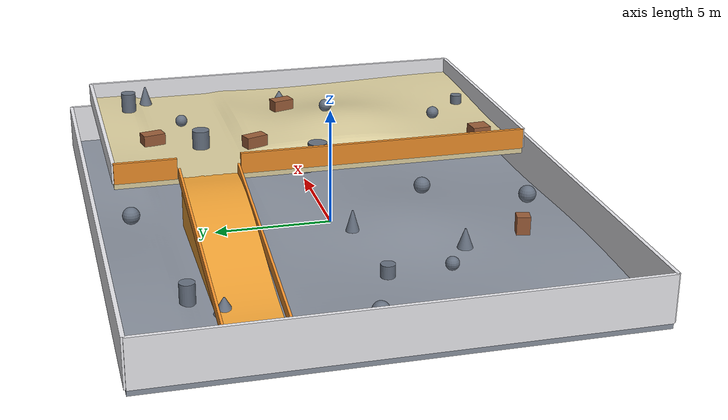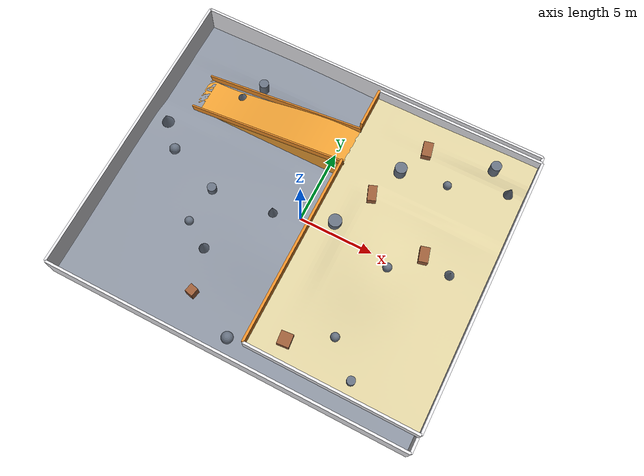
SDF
<?xml version='1.0' encoding='utf-8'?>
<sdf version="1.7">
  <world name="floor_7">
    <gravity>0 0 -9.8</gravity>
    <plugin name="gazebo_ros_state" filename="libgazebo_ros_state.so">
      <ros>
        <namespace>/gazebo</namespace>
      </ros>
    </plugin>
    <physics name="ode_physics" type="ode">
      <max_step_size>0.001</max_step_size>
      <real_time_factor>1</real_time_factor>
      <real_time_update_rate>1000</real_time_update_rate>
      <ode>
        <solver>
          <type>quick</type>
          <iters>150</iters>
          <sor>1.3</sor>
        </solver>
        <constraints>
          <cfm>0</cfm>
          <erp>0.2</erp>
          <contact_max_correcting_vel>0.2</contact_max_correcting_vel>
          <contact_surface_layer>0.001</contact_surface_layer>
        </constraints>
      </ode>
    </physics>
    <light name="sun" type="directional">
      <pose>0 0 28 0 0 0</pose>
      <diffuse>0.92 0.91 0.88 1</diffuse>
      <specular>0.18 0.18 0.16 1</specular>
      <direction>-0.35 -0.28 -0.9</direction>
      <cast_shadows>true</cast_shadows>
    </light>
    <light name="fill" type="point">
      <pose>0 0 4.5 0 0 0</pose>
      <diffuse>0.45 0.48 0.52 1</diffuse>
      <specular>0.02 0.02 0.02 1</specular>
      <cast_shadows>false</cast_shadows>
      <attenuation>
        <range>80</range>
        <constant>0.5</constant>
        <linear>0.02</linear>
      </attenuation>
    </light>
    <scene>
      <ambient>0.48 0.49 0.53 1</ambient>
      <background>0.72 0.77 0.84 1</background>
    </scene>
    <gui fullscreen="false">
      <camera name="user_camera">
        <pose>16.8 -18 20.4 0 0.65 2.2</pose>
        <view_controller>orbit</view_controller>
      </camera>
    </gui>
    <model name="floor_7_structure">
      <static>true</static>
      <link name="structure">
        <collision name="lower_surface_collision">
          <pose>0 0 0 0 0 0</pose>
          <geometry>
            <mesh>
              <uri>3DModel/floor/surfaces/floor_7_lower_surface.stl</uri>
            </mesh>
          </geometry>
          <max_contacts>40</max_contacts>
          <surface>
            <friction>
              <ode>
                <mu>8</mu>
                <mu2>8</mu2>
              </ode>
            </friction>
            <contact>
              <ode>
                <kp>1e7</kp>
                <kd>1000</kd>
                <max_vel>0.1</max_vel>
                <min_depth>0.001</min_depth>
              </ode>
            </contact>
          </surface>
        </collision>
        <visual name="lower_surface_visual">
          <pose>0 0 0 0 0 0</pose>
          <geometry>
            <mesh>
              <uri>3DModel/floor/surfaces/floor_7_lower_surface.stl</uri>
            </mesh>
          </geometry>
          <material>
            <ambient>0.54 0.57 0.62 1</ambient>
            <diffuse>0.54 0.57 0.62 1</diffuse>
          </material>
        </visual>
        <collision name="upper_surface_collision">
          <pose>0 0 0 0 0 0</pose>
          <geometry>
            <mesh>
              <uri>3DModel/floor/surfaces/floor_7_upper_surface.stl</uri>
            </mesh>
          </geometry>
          <max_contacts>40</max_contacts>
          <surface>
            <friction>
              <ode>
                <mu>8</mu>
                <mu2>8</mu2>
              </ode>
            </friction>
            <contact>
              <ode>
                <kp>1e7</kp>
                <kd>1000</kd>
                <max_vel>0.1</max_vel>
                <min_depth>0.001</min_depth>
              </ode>
            </contact>
          </surface>
        </collision>
        <visual name="upper_surface_visual">
          <pose>0 0 0 0 0 0</pose>
          <geometry>
            <mesh>
              <uri>3DModel/floor/surfaces/floor_7_upper_surface.stl</uri>
            </mesh>
          </geometry>
          <material>
            <ambient>0.86 0.81 0.62 1</ambient>
            <diffuse>0.86 0.81 0.62 1</diffuse>
          </material>
        </visual>
        <collision name="ramp_collision">
          <pose>0 0 0 0 0 0</pose>
          <geometry>
            <mesh>
              <uri>3DModel/floor/surfaces/floor_7_ramp.stl</uri>
            </mesh>
          </geometry>
          <max_contacts>40</max_contacts>
          <surface>
            <friction>
              <ode>
                <mu>8</mu>
                <mu2>8</mu2>
              </ode>
            </friction>
            <contact>
              <ode>
                <kp>1e7</kp>
                <kd>1000</kd>
                <max_vel>0.1</max_vel>
                <min_depth>0.001</min_depth>
              </ode>
            </contact>
          </surface>
        </collision>
        <visual name="ramp_visual">
          <pose>0 0 0 0 0 0</pose>
          <geometry>
            <mesh>
              <uri>3DModel/floor/surfaces/floor_7_ramp.stl</uri>
            </mesh>
          </geometry>
          <material>
            <ambient>0.92 0.62 0.20 1</ambient>
            <diffuse>0.92 0.62 0.20 1</diffuse>
          </material>
        </visual>
        <collision name="ramp_rail_-1_collision">
          <pose>-4.45742636 3.74 1.29173241 0 -0.196525238 0</pose>
          <geometry>
            <box>
              <size>11.2668762 0.1 0.5</size>
            </box>
          </geometry>
          <max_contacts>40</max_contacts>
          <surface>
            <friction>
              <ode>
                <mu>2</mu>
                <mu2>2</mu2>
              </ode>
            </friction>
            <contact>
              <ode>
                <kp>1e7</kp>
                <kd>1000</kd>
                <max_vel>0.1</max_vel>
                <min_depth>0.001</min_depth>
              </ode>
            </contact>
          </surface>
        </collision>
        <visual name="ramp_rail_-1_visual">
          <pose>-4.45742636 3.74 1.29173241 0 -0.196525238 0</pose>
          <geometry>
            <box>
              <size>11.2668762 0.1 0.5</size>
            </box>
          </geometry>
          <material>
            <ambient>0.92 0.55 0.16 1</ambient>
            <diffuse>0.92 0.55 0.16 1</diffuse>
          </material>
        </visual>
        <collision name="ramp_rail_1_collision">
          <pose>-4.45742636 6.26 1.29173241 0 -0.196525238 0</pose>
          <geometry>
            <box>
              <size>11.2668762 0.1 0.5</size>
            </box>
          </geometry>
          <max_contacts>40</max_contacts>
          <surface>
            <friction>
              <ode>
                <mu>2</mu>
                <mu2>2</mu2>
              </ode>
            </friction>
            <contact>
              <ode>
                <kp>1e7</kp>
                <kd>1000</kd>
                <max_vel>0.1</max_vel>
                <min_depth>0.001</min_depth>
              </ode>
            </contact>
          </surface>
        </collision>
        <visual name="ramp_rail_1_visual">
          <pose>-4.45742636 6.26 1.29173241 0 -0.196525238 0</pose>
          <geometry>
            <box>
              <size>11.2668762 0.1 0.5</size>
            </box>
          </geometry>
          <material>
            <ambient>0.92 0.55 0.16 1</ambient>
            <diffuse>0.92 0.55 0.16 1</diffuse>
          </material>
        </visual>
        <collision name="upper_rail_0_collision">
          <pose>6.5 -9 2.65 0 0 0</pose>
          <geometry>
            <box>
              <size>11 0.16 0.9</size>
            </box>
          </geometry>
          <max_contacts>40</max_contacts>
          <surface>
            <friction>
              <ode>
                <mu>2</mu>
                <mu2>2</mu2>
              </ode>
            </friction>
            <contact>
              <ode>
                <kp>1e7</kp>
                <kd>1000</kd>
                <max_vel>0.1</max_vel>
                <min_depth>0.001</min_depth>
              </ode>
            </contact>
          </surface>
        </collision>
        <visual name="upper_rail_0_visual">
          <pose>6.5 -9 2.65 0 0 0</pose>
          <geometry>
            <box>
              <size>11 0.16 0.9</size>
            </box>
          </geometry>
          <material>
            <ambient>0.91 0.91 0.93 1</ambient>
            <diffuse>0.91 0.91 0.93 1</diffuse>
          </material>
        </visual>
        <collision name="upper_rail_1_collision">
          <pose>12 0 2.65 0 0 1.57079633</pose>
          <geometry>
            <box>
              <size>18 0.16 0.9</size>
            </box>
          </geometry>
          <max_contacts>40</max_contacts>
          <surface>
            <friction>
              <ode>
                <mu>2</mu>
                <mu2>2</mu2>
              </ode>
            </friction>
            <contact>
              <ode>
                <kp>1e7</kp>
                <kd>1000</kd>
                <max_vel>0.1</max_vel>
                <min_depth>0.001</min_depth>
              </ode>
            </contact>
          </surface>
        </collision>
        <visual name="upper_rail_1_visual">
          <pose>12 0 2.65 0 0 1.57079633</pose>
          <geometry>
            <box>
              <size>18 0.16 0.9</size>
            </box>
          </geometry>
          <material>
            <ambient>0.91 0.91 0.93 1</ambient>
            <diffuse>0.91 0.91 0.93 1</diffuse>
          </material>
        </visual>
        <collision name="upper_rail_2_collision">
          <pose>6.5 9 2.65 0 0 3.14159265</pose>
          <geometry>
            <box>
              <size>11 0.16 0.9</size>
            </box>
          </geometry>
          <max_contacts>40</max_contacts>
          <surface>
            <friction>
              <ode>
                <mu>2</mu>
                <mu2>2</mu2>
              </ode>
            </friction>
            <contact>
              <ode>
                <kp>1e7</kp>
                <kd>1000</kd>
                <max_vel>0.1</max_vel>
                <min_depth>0.001</min_depth>
              </ode>
            </contact>
          </surface>
        </collision>
        <visual name="upper_rail_2_visual">
          <pose>6.5 9 2.65 0 0 3.14159265</pose>
          <geometry>
            <box>
              <size>11 0.16 0.9</size>
            </box>
          </geometry>
          <material>
            <ambient>0.91 0.91 0.93 1</ambient>
            <diffuse>0.91 0.91 0.93 1</diffuse>
          </material>
        </visual>
        <collision name="upper_west_south_collision">
          <pose>1 -2.675 2.65 0 0 0</pose>
          <geometry>
            <box>
              <size>0.16 12.65 0.9</size>
            </box>
          </geometry>
          <max_contacts>40</max_contacts>
          <surface>
            <friction>
              <ode>
                <mu>2</mu>
                <mu2>2</mu2>
              </ode>
            </friction>
            <contact>
              <ode>
                <kp>1e7</kp>
                <kd>1000</kd>
                <max_vel>0.1</max_vel>
                <min_depth>0.001</min_depth>
              </ode>
            </contact>
          </surface>
        </collision>
        <visual name="upper_west_south_visual">
          <pose>1 -2.675 2.65 0 0 0</pose>
          <geometry>
            <box>
              <size>0.16 12.65 0.9</size>
            </box>
          </geometry>
          <material>
            <ambient>0.92 0.55 0.16 1</ambient>
            <diffuse>0.92 0.55 0.16 1</diffuse>
          </material>
        </visual>
        <collision name="upper_west_north_collision">
          <pose>1 7.675 2.65 0 0 0</pose>
          <geometry>
            <box>
              <size>0.16 2.65 0.9</size>
            </box>
          </geometry>
          <max_contacts>40</max_contacts>
          <surface>
            <friction>
              <ode>
                <mu>2</mu>
                <mu2>2</mu2>
              </ode>
            </friction>
            <contact>
              <ode>
                <kp>1e7</kp>
                <kd>1000</kd>
                <max_vel>0.1</max_vel>
                <min_depth>0.001</min_depth>
              </ode>
            </contact>
          </surface>
        </collision>
        <visual name="upper_west_north_visual">
          <pose>1 7.675 2.65 0 0 0</pose>
          <geometry>
            <box>
              <size>0.16 2.65 0.9</size>
            </box>
          </geometry>
          <material>
            <ambient>0.92 0.55 0.16 1</ambient>
            <diffuse>0.92 0.55 0.16 1</diffuse>
          </material>
        </visual>
        <collision name="boundary_0_collision">
          <pose>0 -10 1 0 0 0</pose>
          <geometry>
            <box>
              <size>24 0.16 2</size>
            </box>
          </geometry>
          <max_contacts>40</max_contacts>
          <surface>
            <friction>
              <ode>
                <mu>2</mu>
                <mu2>2</mu2>
              </ode>
            </friction>
            <contact>
              <ode>
                <kp>1e7</kp>
                <kd>1000</kd>
                <max_vel>0.1</max_vel>
                <min_depth>0.001</min_depth>
              </ode>
            </contact>
          </surface>
        </collision>
        <visual name="boundary_0_visual">
          <pose>0 -10 1 0 0 0</pose>
          <geometry>
            <box>
              <size>24 0.16 2</size>
            </box>
          </geometry>
          <material>
            <ambient>0.91 0.91 0.93 1</ambient>
            <diffuse>0.91 0.91 0.93 1</diffuse>
          </material>
        </visual>
        <collision name="boundary_1_collision">
          <pose>12 0 1 0 0 1.57079633</pose>
          <geometry>
            <box>
              <size>20 0.16 2</size>
            </box>
          </geometry>
          <max_contacts>40</max_contacts>
          <surface>
            <friction>
              <ode>
                <mu>2</mu>
                <mu2>2</mu2>
              </ode>
            </friction>
            <contact>
              <ode>
                <kp>1e7</kp>
                <kd>1000</kd>
                <max_vel>0.1</max_vel>
                <min_depth>0.001</min_depth>
              </ode>
            </contact>
          </surface>
        </collision>
        <visual name="boundary_1_visual">
          <pose>12 0 1 0 0 1.57079633</pose>
          <geometry>
            <box>
              <size>20 0.16 2</size>
            </box>
          </geometry>
          <material>
            <ambient>0.91 0.91 0.93 1</ambient>
            <diffuse>0.91 0.91 0.93 1</diffuse>
          </material>
        </visual>
        <collision name="boundary_2_collision">
          <pose>0 10 1 0 0 3.14159265</pose>
          <geometry>
            <box>
              <size>24 0.16 2</size>
            </box>
          </geometry>
          <max_contacts>40</max_contacts>
          <surface>
            <friction>
              <ode>
                <mu>2</mu>
                <mu2>2</mu2>
              </ode>
            </friction>
            <contact>
              <ode>
                <kp>1e7</kp>
                <kd>1000</kd>
                <max_vel>0.1</max_vel>
                <min_depth>0.001</min_depth>
              </ode>
            </contact>
          </surface>
        </collision>
        <visual name="boundary_2_visual">
          <pose>0 10 1 0 0 3.14159265</pose>
          <geometry>
            <box>
              <size>24 0.16 2</size>
            </box>
          </geometry>
          <material>
            <ambient>0.91 0.91 0.93 1</ambient>
            <diffuse>0.91 0.91 0.93 1</diffuse>
          </material>
        </visual>
        <collision name="boundary_3_collision">
          <pose>-12 0 1 0 0 -1.57079633</pose>
          <geometry>
            <box>
              <size>20 0.16 2</size>
            </box>
          </geometry>
          <max_contacts>40</max_contacts>
          <surface>
            <friction>
              <ode>
                <mu>2</mu>
                <mu2>2</mu2>
              </ode>
            </friction>
            <contact>
              <ode>
                <kp>1e7</kp>
                <kd>1000</kd>
                <max_vel>0.1</max_vel>
                <min_depth>0.001</min_depth>
              </ode>
            </contact>
          </surface>
        </collision>
        <visual name="boundary_3_visual">
          <pose>-12 0 1 0 0 -1.57079633</pose>
          <geometry>
            <box>
              <size>20 0.16 2</size>
            </box>
          </geometry>
          <material>
            <ambient>0.91 0.91 0.93 1</ambient>
            <diffuse>0.91 0.91 0.93 1</diffuse>
          </material>
        </visual>
        <collision name="irregular_prop_0_collision">
          <pose>-3.56487429 -7.36061455 0.627960593 0 0 -0.227197845</pose>
          <geometry>
            <box>
              <size>0.551124896 0.573422428 0.806869126</size>
            </box>
          </geometry>
          <max_contacts>40</max_contacts>
          <surface>
            <friction>
              <ode>
                <mu>2</mu>
                <mu2>2</mu2>
              </ode>
            </friction>
            <contact>
              <ode>
                <kp>1e7</kp>
                <kd>1000</kd>
                <max_vel>0.1</max_vel>
                <min_depth>0.001</min_depth>
              </ode>
            </contact>
          </surface>
        </collision>
        <visual name="irregular_prop_0_visual">
          <pose>-3.56487429 -7.36061455 0.627960593 0 0 -0.227197845</pose>
          <geometry>
            <box>
              <size>0.551124896 0.573422428 0.806869126</size>
            </box>
          </geometry>
          <material>
            <ambient>0.60 0.36 0.22 1</ambient>
            <diffuse>0.60 0.36 0.22 1</diffuse>
          </material>
        </visual>
        <collision name="irregular_prop_1_collision">
          <pose>4.44492743 4.81411745 2.61048063 0 0 2.1020717</pose>
          <geometry>
            <cylinder>
              <radius>0.3800854255418994</radius>
              <length>0.8209612629764576</length>
            </cylinder>
          </geometry>
          <max_contacts>40</max_contacts>
          <surface>
            <friction>
              <ode>
                <mu>2</mu>
                <mu2>2</mu2>
              </ode>
            </friction>
            <contact>
              <ode>
                <kp>1e7</kp>
                <kd>1000</kd>
                <max_vel>0.1</max_vel>
                <min_depth>0.001</min_depth>
              </ode>
            </contact>
          </surface>
        </collision>
        <visual name="irregular_prop_1_visual">
          <pose>4.44492743 4.81411745 2.61048063 0 0 2.1020717</pose>
          <geometry>
            <cylinder>
              <radius>0.3800854255418994</radius>
              <length>0.8209612629764576</length>
            </cylinder>
          </geometry>
          <material>
            <ambient>0.40 0.44 0.50 1</ambient>
            <diffuse>0.40 0.44 0.50 1</diffuse>
          </material>
        </visual>
        <collision name="irregular_prop_2_collision">
          <pose>-0.329623538 -8.83947479 0.529246987 0 0 0.893405061</pose>
          <geometry>
            <sphere>
              <radius>0.38825083114379855</radius>
            </sphere>
          </geometry>
          <max_contacts>40</max_contacts>
          <surface>
            <friction>
              <ode>
                <mu>2</mu>
                <mu2>2</mu2>
              </ode>
            </friction>
            <contact>
              <ode>
                <kp>1e7</kp>
                <kd>1000</kd>
                <max_vel>0.1</max_vel>
                <min_depth>0.001</min_depth>
              </ode>
            </contact>
          </surface>
        </collision>
        <visual name="irregular_prop_2_visual">
          <pose>-0.329623538 -8.83947479 0.529246987 0 0 0.893405061</pose>
          <geometry>
            <sphere>
              <radius>0.38825083114379855</radius>
            </sphere>
          </geometry>
          <material>
            <ambient>0.40 0.44 0.50 1</ambient>
            <diffuse>0.40 0.44 0.50 1</diffuse>
          </material>
        </visual>
        <collision name="irregular_prop_3_collision">
          <pose>0 0 0 0 0 0</pose>
          <geometry>
            <mesh>
              <uri>3DModel/floor/surfaces/floor_7_irregular_prop_3.stl</uri>
            </mesh>
          </geometry>
          <max_contacts>40</max_contacts>
          <surface>
            <friction>
              <ode>
                <mu>8</mu>
                <mu2>8</mu2>
              </ode>
            </friction>
            <contact>
              <ode>
                <kp>1e7</kp>
                <kd>1000</kd>
                <max_vel>0.1</max_vel>
                <min_depth>0.001</min_depth>
              </ode>
            </contact>
          </surface>
        </collision>
        <visual name="irregular_prop_3_visual">
          <pose>0 0 0 0 0 0</pose>
          <geometry>
            <mesh>
              <uri>3DModel/floor/surfaces/floor_7_irregular_prop_3.stl</uri>
            </mesh>
          </geometry>
          <material>
            <ambient>0.40 0.44 0.50 1</ambient>
            <diffuse>0.40 0.44 0.50 1</diffuse>
          </material>
        </visual>
        <collision name="irregular_prop_4_collision">
          <pose>3.57742488 2.55517851 2.644389 0 0 -1.22509759</pose>
          <geometry>
            <box>
              <size>0.989294294 0.546315609 0.506876481</size>
            </box>
          </geometry>
          <max_contacts>40</max_contacts>
          <surface>
            <friction>
              <ode>
                <mu>2</mu>
                <mu2>2</mu2>
              </ode>
            </friction>
            <contact>
              <ode>
                <kp>1e7</kp>
                <kd>1000</kd>
                <max_vel>0.1</max_vel>
                <min_depth>0.001</min_depth>
              </ode>
            </contact>
          </surface>
        </collision>
        <visual name="irregular_prop_4_visual">
          <pose>3.57742488 2.55517851 2.644389 0 0 -1.22509759</pose>
          <geometry>
            <box>
              <size>0.989294294 0.546315609 0.506876481</size>
            </box>
          </geometry>
          <material>
            <ambient>0.60 0.36 0.22 1</ambient>
            <diffuse>0.60 0.36 0.22 1</diffuse>
          </material>
        </visual>
        <collision name="irregular_prop_5_collision">
          <pose>-6.38612629 7.09493291 0.531054694 0 0 3.00805143</pose>
          <geometry>
            <cylinder>
              <radius>0.3182102472037963</radius>
              <length>0.8895106682191299</length>
            </cylinder>
          </geometry>
          <max_contacts>40</max_contacts>
          <surface>
            <friction>
              <ode>
                <mu>2</mu>
                <mu2>2</mu2>
              </ode>
            </friction>
            <contact>
              <ode>
                <kp>1e7</kp>
                <kd>1000</kd>
                <max_vel>0.1</max_vel>
                <min_depth>0.001</min_depth>
              </ode>
            </contact>
          </surface>
        </collision>
        <visual name="irregular_prop_5_visual">
          <pose>-6.38612629 7.09493291 0.531054694 0 0 3.00805143</pose>
          <geometry>
            <cylinder>
              <radius>0.3182102472037963</radius>
              <length>0.8895106682191299</length>
            </cylinder>
          </geometry>
          <material>
            <ambient>0.40 0.44 0.50 1</ambient>
            <diffuse>0.40 0.44 0.50 1</diffuse>
          </material>
        </visual>
        <collision name="irregular_prop_6_collision">
          <pose>6.37490436 -1.31820009 3.0369913 0 0 -0.199158155</pose>
          <geometry>
            <sphere>
              <radius>0.28796113532082335</radius>
            </sphere>
          </geometry>
          <max_contacts>40</max_contacts>
          <surface>
            <friction>
              <ode>
                <mu>2</mu>
                <mu2>2</mu2>
              </ode>
            </friction>
            <contact>
              <ode>
                <kp>1e7</kp>
                <kd>1000</kd>
                <max_vel>0.1</max_vel>
                <min_depth>0.001</min_depth>
              </ode>
            </contact>
          </surface>
        </collision>
        <visual name="irregular_prop_6_visual">
          <pose>6.37490436 -1.31820009 3.0369913 0 0 -0.199158155</pose>
          <geometry>
            <sphere>
              <radius>0.28796113532082335</radius>
            </sphere>
          </geometry>
          <material>
            <ambient>0.40 0.44 0.50 1</ambient>
            <diffuse>0.40 0.44 0.50 1</diffuse>
          </material>
        </visual>
        <collision name="irregular_prop_7_collision">
          <pose>0 0 0 0 0 0</pose>
          <geometry>
            <mesh>
              <uri>3DModel/floor/surfaces/floor_7_irregular_prop_7.stl</uri>
            </mesh>
          </geometry>
          <max_contacts>40</max_contacts>
          <surface>
            <friction>
              <ode>
                <mu>8</mu>
                <mu2>8</mu2>
              </ode>
            </friction>
            <contact>
              <ode>
                <kp>1e7</kp>
                <kd>1000</kd>
                <max_vel>0.1</max_vel>
                <min_depth>0.001</min_depth>
              </ode>
            </contact>
          </surface>
        </collision>
        <visual name="irregular_prop_7_visual">
          <pose>0 0 0 0 0 0</pose>
          <geometry>
            <mesh>
              <uri>3DModel/floor/surfaces/floor_7_irregular_prop_7.stl</uri>
            </mesh>
          </geometry>
          <material>
            <ambient>0.40 0.44 0.50 1</ambient>
            <diffuse>0.40 0.44 0.50 1</diffuse>
          </material>
        </visual>
        <collision name="irregular_prop_8_collision">
          <pose>7.4682423 2.92854176 0.406881149 0 0 -0.364928678</pose>
          <geometry>
            <box>
              <size>0.578229816 0.672020796 0.578926643</size>
            </box>
          </geometry>
          <max_contacts>40</max_contacts>
          <surface>
            <friction>
              <ode>
                <mu>2</mu>
                <mu2>2</mu2>
              </ode>
            </friction>
            <contact>
              <ode>
                <kp>1e7</kp>
                <kd>1000</kd>
                <max_vel>0.1</max_vel>
                <min_depth>0.001</min_depth>
              </ode>
            </contact>
          </surface>
        </collision>
        <visual name="irregular_prop_8_visual">
          <pose>7.4682423 2.92854176 0.406881149 0 0 -0.364928678</pose>
          <geometry>
            <box>
              <size>0.578229816 0.672020796 0.578926643</size>
            </box>
          </geometry>
          <material>
            <ambient>0.60 0.36 0.22 1</ambient>
            <diffuse>0.60 0.36 0.22 1</diffuse>
          </material>
        </visual>
        <collision name="irregular_prop_9_collision">
          <pose>9.54961144 7.44688539 2.85714268 0 0 -2.14334866</pose>
          <geometry>
            <cylinder>
              <radius>0.3308390716145133</radius>
              <length>0.8896119217192243</length>
            </cylinder>
          </geometry>
          <max_contacts>40</max_contacts>
          <surface>
            <friction>
              <ode>
                <mu>2</mu>
                <mu2>2</mu2>
              </ode>
            </friction>
            <contact>
              <ode>
                <kp>1e7</kp>
                <kd>1000</kd>
                <max_vel>0.1</max_vel>
                <min_depth>0.001</min_depth>
              </ode>
            </contact>
          </surface>
        </collision>
        <visual name="irregular_prop_9_visual">
          <pose>9.54961144 7.44688539 2.85714268 0 0 -2.14334866</pose>
          <geometry>
            <cylinder>
              <radius>0.3308390716145133</radius>
              <length>0.8896119217192243</length>
            </cylinder>
          </geometry>
          <material>
            <ambient>0.40 0.44 0.50 1</ambient>
            <diffuse>0.40 0.44 0.50 1</diffuse>
          </material>
        </visual>
        <collision name="irregular_prop_10_collision">
          <pose>-9.40034273 0.409363873 0.50436348 0 0 -1.49203655</pose>
          <geometry>
            <sphere>
              <radius>0.3579967806081187</radius>
            </sphere>
          </geometry>
          <max_contacts>40</max_contacts>
          <surface>
            <friction>
              <ode>
                <mu>2</mu>
                <mu2>2</mu2>
              </ode>
            </friction>
            <contact>
              <ode>
                <kp>1e7</kp>
                <kd>1000</kd>
                <max_vel>0.1</max_vel>
                <min_depth>0.001</min_depth>
              </ode>
            </contact>
          </surface>
        </collision>
        <visual name="irregular_prop_10_visual">
          <pose>-9.40034273 0.409363873 0.50436348 0 0 -1.49203655</pose>
          <geometry>
            <sphere>
              <radius>0.3579967806081187</radius>
            </sphere>
          </geometry>
          <material>
            <ambient>0.40 0.44 0.50 1</ambient>
            <diffuse>0.40 0.44 0.50 1</diffuse>
          </material>
        </visual>
        <collision name="irregular_prop_11_collision">
          <pose>0 0 0 0 0 0</pose>
          <geometry>
            <mesh>
              <uri>3DModel/floor/surfaces/floor_7_irregular_prop_11.stl</uri>
            </mesh>
          </geometry>
          <max_contacts>40</max_contacts>
          <surface>
            <friction>
              <ode>
                <mu>8</mu>
                <mu2>8</mu2>
              </ode>
            </friction>
            <contact>
              <ode>
                <kp>1e7</kp>
                <kd>1000</kd>
                <max_vel>0.1</max_vel>
                <min_depth>0.001</min_depth>
              </ode>
            </contact>
          </surface>
        </collision>
        <visual name="irregular_prop_11_visual">
          <pose>0 0 0 0 0 0</pose>
          <geometry>
            <mesh>
              <uri>3DModel/floor/surfaces/floor_7_irregular_prop_11.stl</uri>
            </mesh>
          </geometry>
          <material>
            <ambient>0.40 0.44 0.50 1</ambient>
            <diffuse>0.40 0.44 0.50 1</diffuse>
          </material>
        </visual>
        <collision name="irregular_prop_12_collision">
          <pose>7.96839166 0.424819046 2.70245319 0 0 -1.30893219</pose>
          <geometry>
            <box>
              <size>0.965508891 0.581796091 0.521059201</size>
            </box>
          </geometry>
          <max_contacts>40</max_contacts>
          <surface>
            <friction>
              <ode>
                <mu>2</mu>
                <mu2>2</mu2>
              </ode>
            </friction>
            <contact>
              <ode>
                <kp>1e7</kp>
                <kd>1000</kd>
                <max_vel>0.1</max_vel>
                <min_depth>0.001</min_depth>
              </ode>
            </contact>
          </surface>
        </collision>
        <visual name="irregular_prop_12_visual">
          <pose>7.96839166 0.424819046 2.70245319 0 0 -1.30893219</pose>
          <geometry>
            <box>
              <size>0.965508891 0.581796091 0.521059201</size>
            </box>
          </geometry>
          <material>
            <ambient>0.60 0.36 0.22 1</ambient>
            <diffuse>0.60 0.36 0.22 1</diffuse>
          </material>
        </visual>
        <collision name="irregular_prop_13_collision">
          <pose>5.47050497 -0.142886403 0.579317966 0 0 2.16713654</pose>
          <geometry>
            <cylinder>
              <radius>0.388287817775619</radius>
              <length>0.6685794964497112</length>
            </cylinder>
          </geometry>
          <max_contacts>40</max_contacts>
          <surface>
            <friction>
              <ode>
                <mu>2</mu>
                <mu2>2</mu2>
              </ode>
            </friction>
            <contact>
              <ode>
                <kp>1e7</kp>
                <kd>1000</kd>
                <max_vel>0.1</max_vel>
                <min_depth>0.001</min_depth>
              </ode>
            </contact>
          </surface>
        </collision>
        <visual name="irregular_prop_13_visual">
          <pose>5.47050497 -0.142886403 0.579317966 0 0 2.16713654</pose>
          <geometry>
            <cylinder>
              <radius>0.388287817775619</radius>
              <length>0.6685794964497112</length>
            </cylinder>
          </geometry>
          <material>
            <ambient>0.40 0.44 0.50 1</ambient>
            <diffuse>0.40 0.44 0.50 1</diffuse>
          </material>
        </visual>
        <collision name="irregular_prop_14_collision">
          <pose>5.47442459 -6.26588866 2.57787793 0 0 1.23143953</pose>
          <geometry>
            <sphere>
              <radius>0.27977486031915216</radius>
            </sphere>
          </geometry>
          <max_contacts>40</max_contacts>
          <surface>
            <friction>
              <ode>
                <mu>2</mu>
                <mu2>2</mu2>
              </ode>
            </friction>
            <contact>
              <ode>
                <kp>1e7</kp>
                <kd>1000</kd>
                <max_vel>0.1</max_vel>
                <min_depth>0.001</min_depth>
              </ode>
            </contact>
          </surface>
        </collision>
        <visual name="irregular_prop_14_visual">
          <pose>5.47442459 -6.26588866 2.57787793 0 0 1.23143953</pose>
          <geometry>
            <sphere>
              <radius>0.27977486031915216</radius>
            </sphere>
          </geometry>
          <material>
            <ambient>0.40 0.44 0.50 1</ambient>
            <diffuse>0.40 0.44 0.50 1</diffuse>
          </material>
        </visual>
        <collision name="irregular_prop_15_collision">
          <pose>0 0 0 0 0 0</pose>
          <geometry>
            <mesh>
              <uri>3DModel/floor/surfaces/floor_7_irregular_prop_15.stl</uri>
            </mesh>
          </geometry>
          <max_contacts>40</max_contacts>
          <surface>
            <friction>
              <ode>
                <mu>8</mu>
                <mu2>8</mu2>
              </ode>
            </friction>
            <contact>
              <ode>
                <kp>1e7</kp>
                <kd>1000</kd>
                <max_vel>0.1</max_vel>
                <min_depth>0.001</min_depth>
              </ode>
            </contact>
          </surface>
        </collision>
        <visual name="irregular_prop_15_visual">
          <pose>0 0 0 0 0 0</pose>
          <geometry>
            <mesh>
              <uri>3DModel/floor/surfaces/floor_7_irregular_prop_15.stl</uri>
            </mesh>
          </geometry>
          <material>
            <ambient>0.40 0.44 0.50 1</ambient>
            <diffuse>0.40 0.44 0.50 1</diffuse>
          </material>
        </visual>
        <collision name="irregular_prop_16_collision">
          <pose>5.35219692 6.84496219 2.47422077 0 0 -1.34698744</pose>
          <geometry>
            <box>
              <size>0.986630456 0.605407261 0.501863333</size>
            </box>
          </geometry>
          <max_contacts>40</max_contacts>
          <surface>
            <friction>
              <ode>
                <mu>2</mu>
                <mu2>2</mu2>
              </ode>
            </friction>
            <contact>
              <ode>
                <kp>1e7</kp>
                <kd>1000</kd>
                <max_vel>0.1</max_vel>
                <min_depth>0.001</min_depth>
              </ode>
            </contact>
          </surface>
        </collision>
        <visual name="irregular_prop_16_visual">
          <pose>5.35219692 6.84496219 2.47422077 0 0 -1.34698744</pose>
          <geometry>
            <box>
              <size>0.986630456 0.605407261 0.501863333</size>
            </box>
          </geometry>
          <material>
            <ambient>0.60 0.36 0.22 1</ambient>
            <diffuse>0.60 0.36 0.22 1</diffuse>
          </material>
        </visual>
        <collision name="irregular_prop_17_collision">
          <pose>8.40409523 -0.99406171 0.576196531 0 0 0.497273524</pose>
          <geometry>
            <cylinder>
              <radius>0.4109887135351308</radius>
              <length>0.875896622130325</length>
            </cylinder>
          </geometry>
          <max_contacts>40</max_contacts>
          <surface>
            <friction>
              <ode>
                <mu>2</mu>
                <mu2>2</mu2>
              </ode>
            </friction>
            <contact>
              <ode>
                <kp>1e7</kp>
                <kd>1000</kd>
                <max_vel>0.1</max_vel>
                <min_depth>0.001</min_depth>
              </ode>
            </contact>
          </surface>
        </collision>
        <visual name="irregular_prop_17_visual">
          <pose>8.40409523 -0.99406171 0.576196531 0 0 0.497273524</pose>
          <geometry>
            <cylinder>
              <radius>0.4109887135351308</radius>
              <length>0.875896622130325</length>
            </cylinder>
          </geometry>
          <material>
            <ambient>0.40 0.44 0.50 1</ambient>
            <diffuse>0.40 0.44 0.50 1</diffuse>
          </material>
        </visual>
        <collision name="irregular_prop_18_collision">
          <pose>-6.08585827 -3.45297632 0.422326177 0 0 -2.3009099</pose>
          <geometry>
            <sphere>
              <radius>0.28626754024316686</radius>
            </sphere>
          </geometry>
          <max_contacts>40</max_contacts>
          <surface>
            <friction>
              <ode>
                <mu>2</mu>
                <mu2>2</mu2>
              </ode>
            </friction>
            <contact>
              <ode>
                <kp>1e7</kp>
                <kd>1000</kd>
                <max_vel>0.1</max_vel>
                <min_depth>0.001</min_depth>
              </ode>
            </contact>
          </surface>
        </collision>
        <visual name="irregular_prop_18_visual">
          <pose>-6.08585827 -3.45297632 0.422326177 0 0 -2.3009099</pose>
          <geometry>
            <sphere>
              <radius>0.28626754024316686</radius>
            </sphere>
          </geometry>
          <material>
            <ambient>0.40 0.44 0.50 1</ambient>
            <diffuse>0.40 0.44 0.50 1</diffuse>
          </material>
        </visual>
        <collision name="irregular_prop_19_collision">
          <pose>0 0 0 0 0 0</pose>
          <geometry>
            <mesh>
              <uri>3DModel/floor/surfaces/floor_7_irregular_prop_19.stl</uri>
            </mesh>
          </geometry>
          <max_contacts>40</max_contacts>
          <surface>
            <friction>
              <ode>
                <mu>8</mu>
                <mu2>8</mu2>
              </ode>
            </friction>
            <contact>
              <ode>
                <kp>1e7</kp>
                <kd>1000</kd>
                <max_vel>0.1</max_vel>
                <min_depth>0.001</min_depth>
              </ode>
            </contact>
          </surface>
        </collision>
        <visual name="irregular_prop_19_visual">
          <pose>0 0 0 0 0 0</pose>
          <geometry>
            <mesh>
              <uri>3DModel/floor/surfaces/floor_7_irregular_prop_19.stl</uri>
            </mesh>
          </geometry>
          <material>
            <ambient>0.40 0.44 0.50 1</ambient>
            <diffuse>0.40 0.44 0.50 1</diffuse>
          </material>
        </visual>
        <collision name="irregular_prop_20_collision">
          <pose>3.00745098 -7.68262206 2.45558547 0 0 1.65822726</pose>
          <geometry>
            <box>
              <size>0.819936615 0.764238585 0.465873575</size>
            </box>
          </geometry>
          <max_contacts>40</max_contacts>
          <surface>
            <friction>
              <ode>
                <mu>2</mu>
                <mu2>2</mu2>
              </ode>
            </friction>
            <contact>
              <ode>
                <kp>1e7</kp>
                <kd>1000</kd>
                <max_vel>0.1</max_vel>
                <min_depth>0.001</min_depth>
              </ode>
            </contact>
          </surface>
        </collision>
        <visual name="irregular_prop_20_visual">
          <pose>3.00745098 -7.68262206 2.45558547 0 0 1.65822726</pose>
          <geometry>
            <box>
              <size>0.819936615 0.764238585 0.465873575</size>
            </box>
          </geometry>
          <material>
            <ambient>0.60 0.36 0.22 1</ambient>
            <diffuse>0.60 0.36 0.22 1</diffuse>
          </material>
        </visual>
        <collision name="irregular_prop_21_collision">
          <pose>-5.91542764 -0.857731929 0.341480781 0 0 -0.557503224</pose>
          <geometry>
            <cylinder>
              <radius>0.3032742180214731</radius>
              <length>0.5548762699009939</length>
            </cylinder>
          </geometry>
          <max_contacts>40</max_contacts>
          <surface>
            <friction>
              <ode>
                <mu>2</mu>
                <mu2>2</mu2>
              </ode>
            </friction>
            <contact>
              <ode>
                <kp>1e7</kp>
                <kd>1000</kd>
                <max_vel>0.1</max_vel>
                <min_depth>0.001</min_depth>
              </ode>
            </contact>
          </surface>
        </collision>
        <visual name="irregular_prop_21_visual">
          <pose>-5.91542764 -0.857731929 0.341480781 0 0 -0.557503224</pose>
          <geometry>
            <cylinder>
              <radius>0.3032742180214731</radius>
              <length>0.5548762699009939</length>
            </cylinder>
          </geometry>
          <material>
            <ambient>0.40 0.44 0.50 1</ambient>
            <diffuse>0.40 0.44 0.50 1</diffuse>
          </material>
        </visual>
        <collision name="irregular_prop_22_collision">
          <pose>1.58365675 8.32715059 0.455170793 0 0 -2.13852544</pose>
          <geometry>
            <sphere>
              <radius>0.37722770253700133</radius>
            </sphere>
          </geometry>
          <max_contacts>40</max_contacts>
          <surface>
            <friction>
              <ode>
                <mu>2</mu>
                <mu2>2</mu2>
              </ode>
            </friction>
            <contact>
              <ode>
                <kp>1e7</kp>
                <kd>1000</kd>
                <max_vel>0.1</max_vel>
                <min_depth>0.001</min_depth>
              </ode>
            </contact>
          </surface>
        </collision>
        <visual name="irregular_prop_22_visual">
          <pose>1.58365675 8.32715059 0.455170793 0 0 -2.13852544</pose>
          <geometry>
            <sphere>
              <radius>0.37722770253700133</radius>
            </sphere>
          </geometry>
          <material>
            <ambient>0.40 0.44 0.50 1</ambient>
            <diffuse>0.40 0.44 0.50 1</diffuse>
          </material>
        </visual>
        <collision name="irregular_prop_23_collision">
          <pose>0 0 0 0 0 0</pose>
          <geometry>
            <mesh>
              <uri>3DModel/floor/surfaces/floor_7_irregular_prop_23.stl</uri>
            </mesh>
          </geometry>
          <max_contacts>40</max_contacts>
          <surface>
            <friction>
              <ode>
                <mu>8</mu>
                <mu2>8</mu2>
              </ode>
            </friction>
            <contact>
              <ode>
                <kp>1e7</kp>
                <kd>1000</kd>
                <max_vel>0.1</max_vel>
                <min_depth>0.001</min_depth>
              </ode>
            </contact>
          </surface>
        </collision>
        <visual name="irregular_prop_23_visual">
          <pose>0 0 0 0 0 0</pose>
          <geometry>
            <mesh>
              <uri>3DModel/floor/surfaces/floor_7_irregular_prop_23.stl</uri>
            </mesh>
          </geometry>
          <material>
            <ambient>0.40 0.44 0.50 1</ambient>
            <diffuse>0.40 0.44 0.50 1</diffuse>
          </material>
        </visual>
        <collision name="irregular_prop_24_collision">
          <pose>9.8498109 5.79819374 0.305272699 0 0 1.74572772</pose>
          <geometry>
            <box>
              <size>0.510109205 0.559080472 0.610545398</size>
            </box>
          </geometry>
          <max_contacts>40</max_contacts>
          <surface>
            <friction>
              <ode>
                <mu>2</mu>
                <mu2>2</mu2>
              </ode>
            </friction>
            <contact>
              <ode>
                <kp>1e7</kp>
                <kd>1000</kd>
                <max_vel>0.1</max_vel>
                <min_depth>0.001</min_depth>
              </ode>
            </contact>
          </surface>
        </collision>
        <visual name="irregular_prop_24_visual">
          <pose>9.8498109 5.79819374 0.305272699 0 0 1.74572772</pose>
          <geometry>
            <box>
              <size>0.510109205 0.559080472 0.610545398</size>
            </box>
          </geometry>
          <material>
            <ambient>0.60 0.36 0.22 1</ambient>
            <diffuse>0.60 0.36 0.22 1</diffuse>
          </material>
        </visual>
        <collision name="irregular_prop_25_collision">
          <pose>2.35748334 -0.000803966177 2.4933516 0 0 2.44145263</pose>
          <geometry>
            <cylinder>
              <radius>0.4199475141549315</radius>
              <length>0.5297655014790085</length>
            </cylinder>
          </geometry>
          <max_contacts>40</max_contacts>
          <surface>
            <friction>
              <ode>
                <mu>2</mu>
                <mu2>2</mu2>
              </ode>
            </friction>
            <contact>
              <ode>
                <kp>1e7</kp>
                <kd>1000</kd>
                <max_vel>0.1</max_vel>
                <min_depth>0.001</min_depth>
              </ode>
            </contact>
          </surface>
        </collision>
        <visual name="irregular_prop_25_visual">
          <pose>2.35748334 -0.000803966177 2.4933516 0 0 2.44145263</pose>
          <geometry>
            <cylinder>
              <radius>0.4199475141549315</radius>
              <length>0.5297655014790085</length>
            </cylinder>
          </geometry>
          <material>
            <ambient>0.40 0.44 0.50 1</ambient>
            <diffuse>0.40 0.44 0.50 1</diffuse>
          </material>
        </visual>
        <collision name="irregular_prop_26_collision">
          <pose>7.41544086 5.26766927 2.4692517 0 0 -0.622167348</pose>
          <geometry>
            <sphere>
              <radius>0.2692516962438807</radius>
            </sphere>
          </geometry>
          <max_contacts>40</max_contacts>
          <surface>
            <friction>
              <ode>
                <mu>2</mu>
                <mu2>2</mu2>
              </ode>
            </friction>
            <contact>
              <ode>
                <kp>1e7</kp>
                <kd>1000</kd>
                <max_vel>0.1</max_vel>
                <min_depth>0.001</min_depth>
              </ode>
            </contact>
          </surface>
        </collision>
        <visual name="irregular_prop_26_visual">
          <pose>7.41544086 5.26766927 2.4692517 0 0 -0.622167348</pose>
          <geometry>
            <sphere>
              <radius>0.2692516962438807</radius>
            </sphere>
          </geometry>
          <material>
            <ambient>0.40 0.44 0.50 1</ambient>
            <diffuse>0.40 0.44 0.50 1</diffuse>
          </material>
        </visual>
        <collision name="irregular_prop_27_collision">
          <pose>0 0 0 0 0 0</pose>
          <geometry>
            <mesh>
              <uri>3DModel/floor/surfaces/floor_7_irregular_prop_27.stl</uri>
            </mesh>
          </geometry>
          <max_contacts>40</max_contacts>
          <surface>
            <friction>
              <ode>
                <mu>8</mu>
                <mu2>8</mu2>
              </ode>
            </friction>
            <contact>
              <ode>
                <kp>1e7</kp>
                <kd>1000</kd>
                <max_vel>0.1</max_vel>
                <min_depth>0.001</min_depth>
              </ode>
            </contact>
          </surface>
        </collision>
        <visual name="irregular_prop_27_visual">
          <pose>0 0 0 0 0 0</pose>
          <geometry>
            <mesh>
              <uri>3DModel/floor/surfaces/floor_7_irregular_prop_27.stl</uri>
            </mesh>
          </geometry>
          <material>
            <ambient>0.40 0.44 0.50 1</ambient>
            <diffuse>0.40 0.44 0.50 1</diffuse>
          </material>
        </visual>
        <collision name="irregular_prop_28_collision">
          <pose>8.55571489 0.588528771 0.573036314 0 0 -0.0736946891</pose>
          <geometry>
            <box>
              <size>0.742295034 0.469139636 0.862688151</size>
            </box>
          </geometry>
          <max_contacts>40</max_contacts>
          <surface>
            <friction>
              <ode>
                <mu>2</mu>
                <mu2>2</mu2>
              </ode>
            </friction>
            <contact>
              <ode>
                <kp>1e7</kp>
                <kd>1000</kd>
                <max_vel>0.1</max_vel>
                <min_depth>0.001</min_depth>
              </ode>
            </contact>
          </surface>
        </collision>
        <visual name="irregular_prop_28_visual">
          <pose>8.55571489 0.588528771 0.573036314 0 0 -0.0736946891</pose>
          <geometry>
            <box>
              <size>0.742295034 0.469139636 0.862688151</size>
            </box>
          </geometry>
          <material>
            <ambient>0.60 0.36 0.22 1</ambient>
            <diffuse>0.60 0.36 0.22 1</diffuse>
          </material>
        </visual>
        <collision name="irregular_prop_29_collision">
          <pose>7.35856704 -8.0620031 2.49099574 0 0 1.45947682</pose>
          <geometry>
            <cylinder>
              <radius>0.26347917012737204</radius>
              <length>0.41915274863761504</length>
            </cylinder>
          </geometry>
          <max_contacts>40</max_contacts>
          <surface>
            <friction>
              <ode>
                <mu>2</mu>
                <mu2>2</mu2>
              </ode>
            </friction>
            <contact>
              <ode>
                <kp>1e7</kp>
                <kd>1000</kd>
                <max_vel>0.1</max_vel>
                <min_depth>0.001</min_depth>
              </ode>
            </contact>
          </surface>
        </collision>
        <visual name="irregular_prop_29_visual">
          <pose>7.35856704 -8.0620031 2.49099574 0 0 1.45947682</pose>
          <geometry>
            <cylinder>
              <radius>0.26347917012737204</radius>
              <length>0.41915274863761504</length>
            </cylinder>
          </geometry>
          <material>
            <ambient>0.40 0.44 0.50 1</ambient>
            <diffuse>0.40 0.44 0.50 1</diffuse>
          </material>
        </visual>
        <collision name="irregular_prop_30_collision">
          <pose>1.39572255 -4.52744848 0.683487561 0 0 -2.02849918</pose>
          <geometry>
            <sphere>
              <radius>0.3651041053040325</radius>
            </sphere>
          </geometry>
          <max_contacts>40</max_contacts>
          <surface>
            <friction>
              <ode>
                <mu>2</mu>
                <mu2>2</mu2>
              </ode>
            </friction>
            <contact>
              <ode>
                <kp>1e7</kp>
                <kd>1000</kd>
                <max_vel>0.1</max_vel>
                <min_depth>0.001</min_depth>
              </ode>
            </contact>
          </surface>
        </collision>
        <visual name="irregular_prop_30_visual">
          <pose>1.39572255 -4.52744848 0.683487561 0 0 -2.02849918</pose>
          <geometry>
            <sphere>
              <radius>0.3651041053040325</radius>
            </sphere>
          </geometry>
          <material>
            <ambient>0.40 0.44 0.50 1</ambient>
            <diffuse>0.40 0.44 0.50 1</diffuse>
          </material>
        </visual>
        <collision name="irregular_prop_31_collision">
          <pose>0 0 0 0 0 0</pose>
          <geometry>
            <mesh>
              <uri>3DModel/floor/surfaces/floor_7_irregular_prop_31.stl</uri>
            </mesh>
          </geometry>
          <max_contacts>40</max_contacts>
          <surface>
            <friction>
              <ode>
                <mu>8</mu>
                <mu2>8</mu2>
              </ode>
            </friction>
            <contact>
              <ode>
                <kp>1e7</kp>
                <kd>1000</kd>
                <max_vel>0.1</max_vel>
                <min_depth>0.001</min_depth>
              </ode>
            </contact>
          </surface>
        </collision>
        <visual name="irregular_prop_31_visual">
          <pose>0 0 0 0 0 0</pose>
          <geometry>
            <mesh>
              <uri>3DModel/floor/surfaces/floor_7_irregular_prop_31.stl</uri>
            </mesh>
          </geometry>
          <material>
            <ambient>0.40 0.44 0.50 1</ambient>
            <diffuse>0.40 0.44 0.50 1</diffuse>
          </material>
        </visual>
      </link>
    </model>
  </world>
</sdf>
